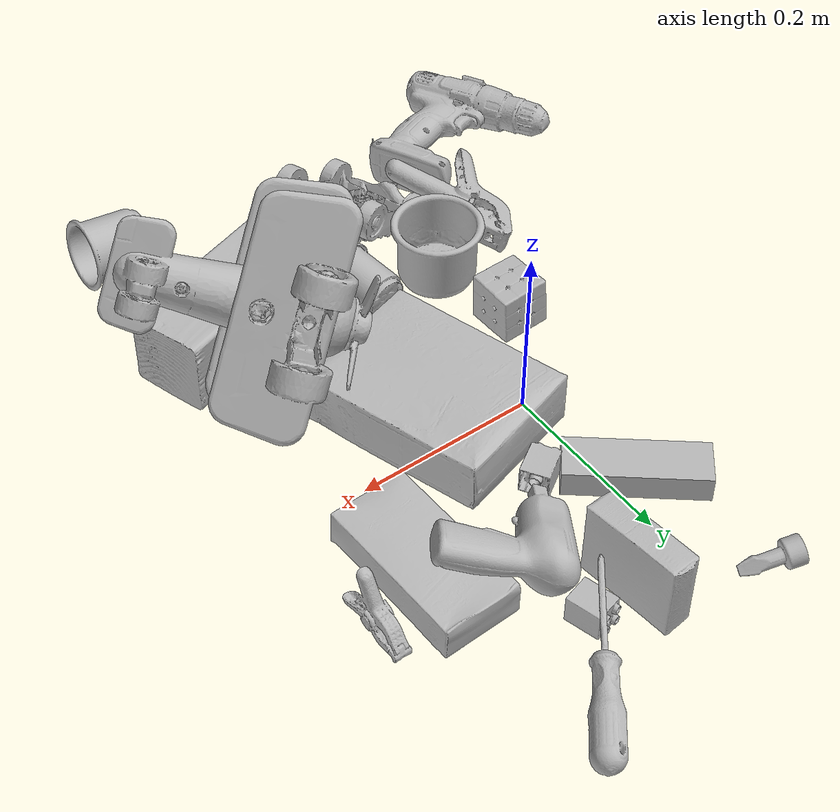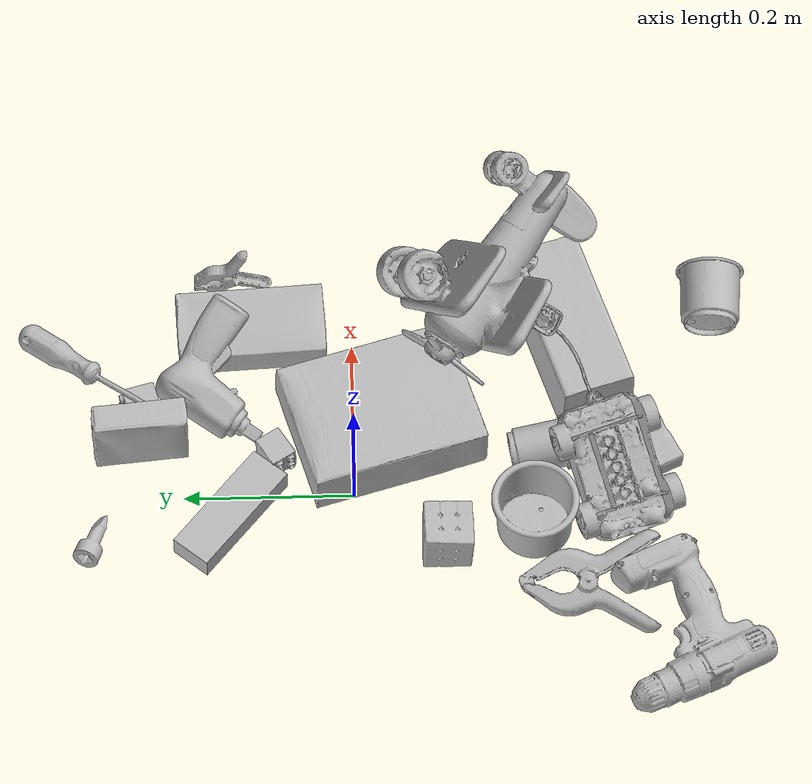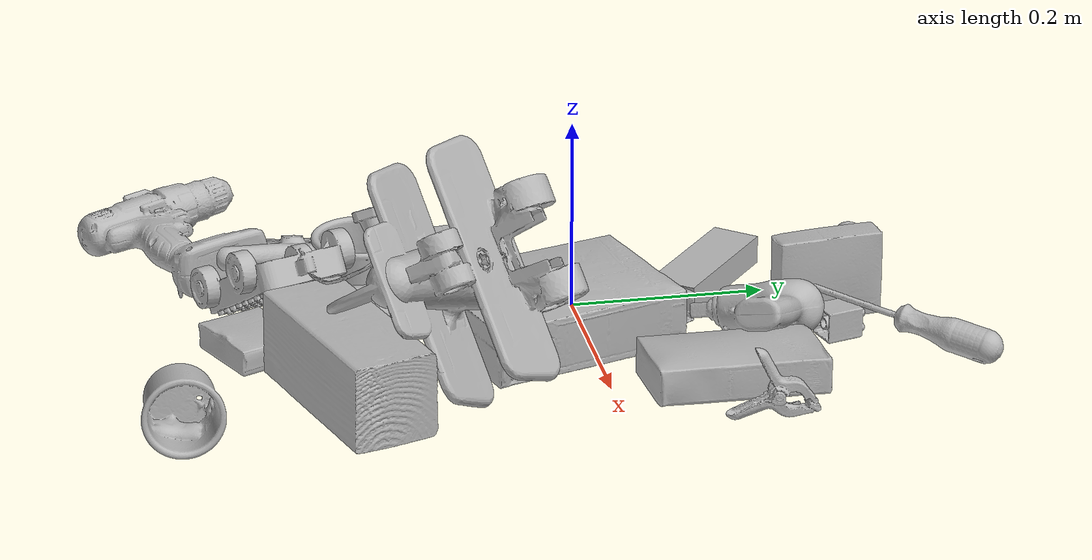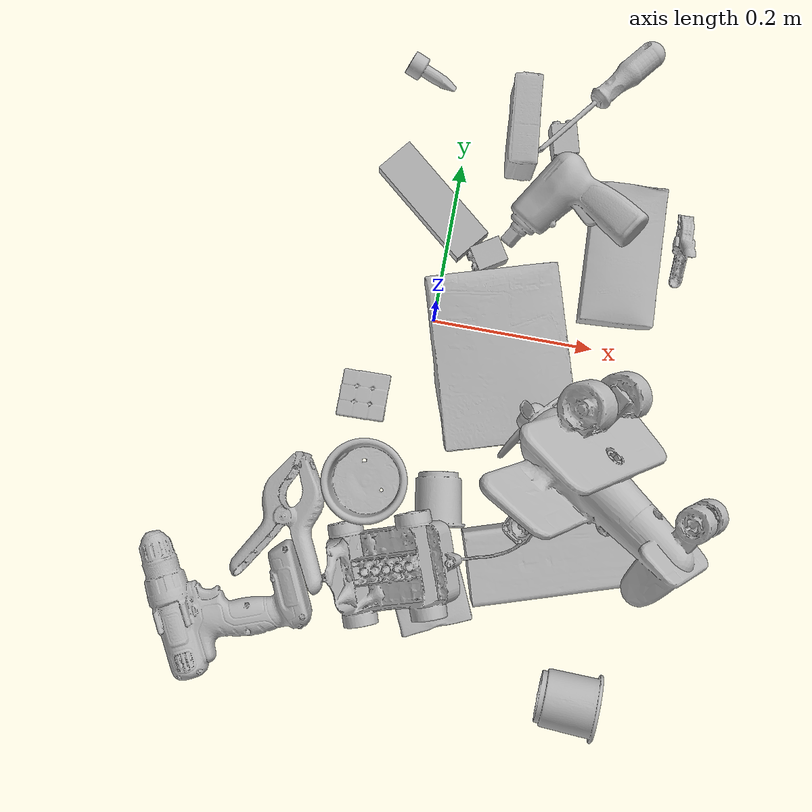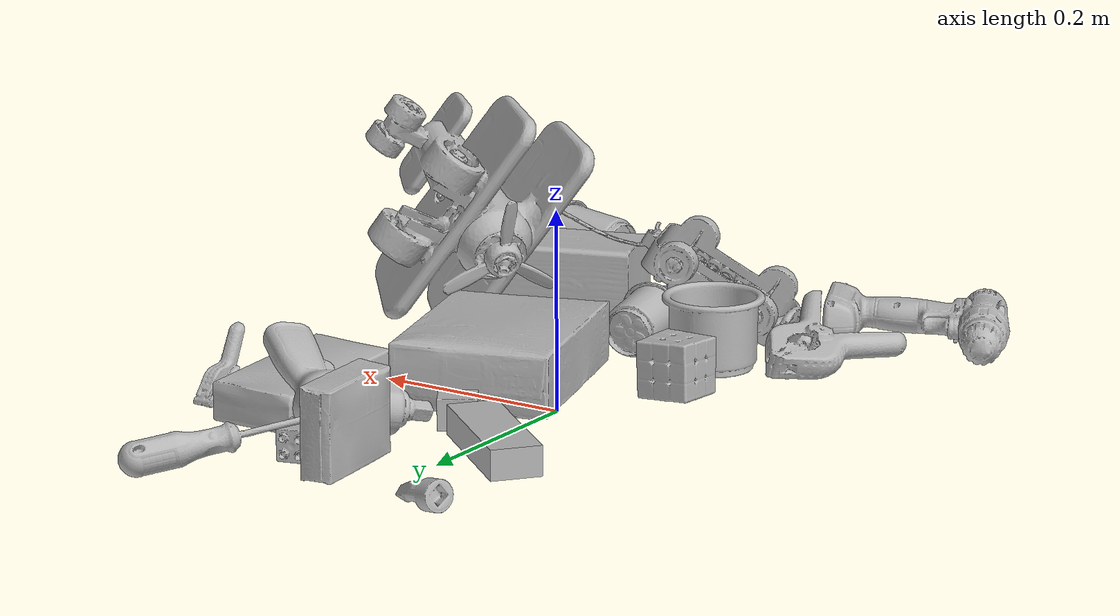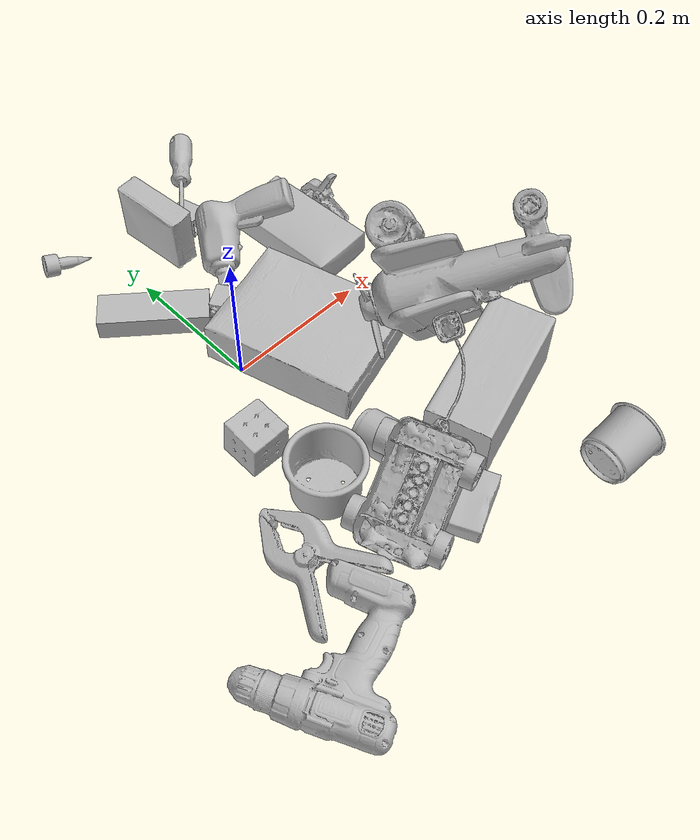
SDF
<sdf version="1.4">
  <world name="default">
    <light name="light1" type="point">
      <pose>0 0 1 0 0 0</pose>
      <diffuse>3 3 3 1</diffuse>
      <specular>3 3 3 1</specular>
    </light>
    <light name="light2" type="point">
      <pose>0 0.5 2 0 0 0</pose>
      <diffuse>1 1 1 1</diffuse>
      <specular>1 1 1 1</specular>
    </light>
    <light name="light3" type="point">
      <pose>0 0.5 2 0 0 0</pose>
      <diffuse>3 3 3 1</diffuse>
      <specular>3 3 3 1</specular>
    </light>
    <scene>
      <ambient>0.7 0.7 0.7</ambient>
    </scene>
    <model name="box21">
      <link name="link_box21">
        <collision name="default">
          <geometry>
            <mesh>
              <uri>model://cracker_box/collision_meshes/collision.obj</uri>
              <scale>1.0 1.0 1.0</scale>
            </mesh>
          </geometry>
          <surface>
            <friction>
              <ode>
                <mu>0.5</mu>
                <mu2>0.5</mu2>
              </ode>
            </friction>
          <contact>
        <ode>
            <max_vel>0</max_vel>
            <min_depth>0.0001</min_depth>
            <kp>1e8</kp>
        </ode>
    </contact></surface>
        </collision>
        <visual name="default">
          <geometry>
            <mesh>
              <uri>model://cracker_box/visual_meshes/visual.dae</uri>
              <scale>1.0 1.0 1.0</scale>
            </mesh>
          </geometry>
        </visual>
        <inertial>
          <mass>2.2869980335235596</mass>
          <pose>0.0009464151225984097 0.0002543425071053207 -0.0017029535956680775 -0.0003162075418873318 -0.011106487737663914 0.0025467956997025456</pose>
          <inertia>
            <ixx>0.005817102</ixx>
            <iyy>0.009605178</iyy>
            <izz>0.013707472</izz>
            <ixy>0</ixy>
            <ixz>0</ixz>
            <iyz>0</iyz>
          </inertia>
        </inertial>
      </link>
      <pose>0.08729596436023712 -0.03293680399656296 0.035531237721443176 3.1372092536164136 -0.01654166793285602 1.8688733891029259</pose>
    </model>
    <model name="box22">
      <link name="link_box22">
        <collision name="default">
          <geometry>
            <mesh>
              <uri>model://pudding_box/collision_meshes/collision.obj</uri>
              <scale>1.0 1.0 1.0</scale>
            </mesh>
          </geometry>
          <surface>
            <friction>
              <ode>
                <mu>0.5</mu>
                <mu2>0.5</mu2>
              </ode>
            </friction>
          <contact>
        <ode>
            <max_vel>0</max_vel>
            <min_depth>0.0001</min_depth>
            <kp>1e8</kp>
        </ode>
    </contact></surface>
        </collision>
        <visual name="default">
          <geometry>
            <mesh>
              <uri>model://pudding_box/visual_meshes/visual.dae</uri>
              <scale>1.0 1.0 1.0</scale>
            </mesh>
          </geometry>
        </visual>
        <inertial>
          <mass>0.5370154976844788</mass>
          <pose>0.0004894821904599667 0.0008067885646596551 -0.0005188827635720372 0.005213101796859606 -0.006603800100757192 0.02007981956729938</pose>
          <inertia>
            <ixx>0.0006070684</ixx>
            <iyy>0.00040843996</iyy>
            <izz>0.00089649507</izz>
            <ixy>0</ixy>
            <ixz>0</ixz>
            <iyz>0</iyz>
          </inertia>
        </inertial>
      </link>
      <pose>0.06650879234075546 0.250510036945343 0.04457630589604378 -0.020294476519508185 -1.5480654588173075 -3.0308014021554754</pose>
    </model>
    <model name="box23">
      <link name="link_box23">
        <collision name="default">
          <geometry>
            <mesh>
              <uri>model://jenga/collision_meshes/collision.obj</uri>
              <scale>1.0 1.0 1.0</scale>
            </mesh>
          </geometry>
          <surface>
            <friction>
              <ode>
                <mu>0.5</mu>
                <mu2>0.5</mu2>
              </ode>
            </friction>
          <contact>
        <ode>
            <max_vel>0</max_vel>
            <min_depth>0.0001</min_depth>
            <kp>1e8</kp>
        </ode>
    </contact></surface>
        </collision>
        <visual name="default">
          <geometry>
            <mesh>
              <uri>model://jenga/visual_meshes/visual.dae</uri>
              <scale>1.0 1.0 1.0</scale>
            </mesh>
          </geometry>
        </visual>
        <inertial>
          <mass>0.17325031757354736</mass>
          <pose>-2.502855807051674e-07 -0.0001025000965455547 -4.0923401684267446e-05 0.0 -7.34215461761844e-07 0.0</pose>
          <inertia>
            <ixx>4.7942573e-05</ixx>
            <iyy>0.00032485754</iyy>
            <izz>0.00034681303</izz>
            <ixy>0</ixy>
            <ixz>0</ixz>
            <iyz>0</iyz>
          </inertia>
        </inertial>
      </link>
      <pose>-0.027045227587223053 0.14530184864997864 0.015000001527369022 3.1415926495522815 6.821740013153601e-09 2.454512551575128</pose>
    </model>
    <model name="cup1">
      <link name="link_cup1">
        <collision name="default">
          <geometry>
            <mesh>
              <uri>model://c_cups/collision_meshes/collision.obj</uri>
              <scale>1.0 1.0 1.0</scale>
            </mesh>
          </geometry>
          <surface>
            <friction>
              <ode>
                <mu>0.5</mu>
                <mu2>0.5</mu2>
              </ode>
            </friction>
          <contact>
        <ode>
            <max_vel>0</max_vel>
            <min_depth>0.0001</min_depth>
            <kp>1e8</kp>
        </ode>
    </contact></surface>
        </collision>
        <visual name="default">
          <geometry>
            <mesh>
              <uri>model://c_cups/visual_meshes/visual.dae</uri>
              <scale>1.0 1.0 1.0</scale>
            </mesh>
          </geometry>
        </visual>
        <inertial>
          <mass>0.033937059342861176</mass>
          <pose>0.0007237257086671889 0.002015391131862998 -0.0012750985333696008 0.3021568203324006 0.0134615240317058 -0.08771816491093205</pose>
          <inertia>
            <ixx>2.5238536e-05</ixx>
            <iyy>2.4792533e-05</iyy>
            <izz>2.2320162e-05</izz>
            <ixy>0</ixy>
            <ixz>0</ixz>
            <iyz>0</iyz>
          </inertia>
        </inertial>
      </link>
      <pose>0.04422016814351082 -0.21673953533172607 0.03021262399852276 -1.4872273623971048 0.3023477536089057 -2.950985590317281</pose>
    </model>
    <model name="cup2">
      <link name="link_cup2">
        <collision name="default">
          <geometry>
            <mesh>
              <uri>model://f_cups/collision_meshes/collision.obj</uri>
              <scale>1.0 1.0 1.0</scale>
            </mesh>
          </geometry>
          <surface>
            <friction>
              <ode>
                <mu>0.5</mu>
                <mu2>0.5</mu2>
              </ode>
            </friction>
          <contact>
        <ode>
            <max_vel>0</max_vel>
            <min_depth>0.0001</min_depth>
            <kp>1e8</kp>
        </ode>
    </contact></surface>
        </collision>
        <visual name="default">
          <geometry>
            <mesh>
              <uri>model://f_cups/visual_meshes/visual.dae</uri>
              <scale>1.0 1.0 1.0</scale>
            </mesh>
          </geometry>
        </visual>
        <inertial>
          <mass>0.10278050601482391</mass>
          <pose>-0.003171466989442706 -0.0006240068469196558 -0.003655537962913513 0.7862283183637603 -0.2607933822369466 -0.1823733550036739</pose>
          <inertia>
            <ixx>9.661645e-05</ixx>
            <iyy>0.00010135175</iyy>
            <izz>0.000105510015</izz>
            <ixy>0</ixy>
            <ixz>0</ixz>
            <iyz>0</iyz>
          </inertia>
        </inertial>
      </link>
      <pose>0.2386172115802765 -0.42644429206848145 0.03727990761399269 1.0696295581810802 -1.3683050322637473 2.031509397108143</pose>
    </model>
    <model name="box11">
      <link name="link_box11">
        <collision name="default">
          <geometry>
            <mesh>
              <uri>model://wood_block/collision_meshes/collision.obj</uri>
              <scale>1.0 1.0 1.0</scale>
            </mesh>
          </geometry>
          <surface>
            <friction>
              <ode>
                <mu>0.5</mu>
                <mu2>0.5</mu2>
              </ode>
            </friction>
          <contact>
        <ode>
            <max_vel>0</max_vel>
            <min_depth>0.0001</min_depth>
            <kp>1e8</kp>
        </ode>
    </contact></surface>
        </collision>
        <visual name="default">
          <geometry>
            <mesh>
              <uri>model://wood_block/visual_meshes/visual.dae</uri>
              <scale>1.0 1.0 1.0</scale>
            </mesh>
          </geometry>
        </visual>
        <inertial>
          <mass>2.321592330932617</mass>
          <pose>-5.813315056002466e-06 -0.000570809468626976 0.0002640858292579651 -0.052209755297172346 -0.005192694580027673 -0.006861376555374886</pose>
          <inertia>
            <ixx>0.0031066423</ixx>
            <iyy>0.009813884</iyy>
            <izz>0.009777175</izz>
            <ixy>0</ixy>
            <ixz>0</ixz>
            <iyz>0</iyz>
          </inertia>
        </inertial>
      </link>
      <pose>0.18960849940776825 -0.25809940695762634 0.045591481029987335 3.1414817086565887 -0.005754153668264005 0.3052171731579544</pose>
    </model>
    <model name="box12">
      <link name="link_box12">
        <collision name="default">
          <geometry>
            <mesh>
              <uri>model://gelatin_box/collision_meshes/collision.obj</uri>
              <scale>1.0 1.0 1.0</scale>
            </mesh>
          </geometry>
          <surface>
            <friction>
              <ode>
                <mu>0.5</mu>
                <mu2>0.5</mu2>
              </ode>
            </friction>
          <contact>
        <ode>
            <max_vel>0</max_vel>
            <min_depth>0.0001</min_depth>
            <kp>1e8</kp>
        </ode>
    </contact></surface>
        </collision>
        <visual name="default">
          <geometry>
            <mesh>
              <uri>model://gelatin_box/visual_meshes/visual.dae</uri>
              <scale>1.0 1.0 1.0</scale>
            </mesh>
          </geometry>
        </visual>
        <inertial>
          <mass>0.2263340801000595</mass>
          <pose>0.0004319618456065655 0.00011156871914863586 -0.00036403207923285663 -0.001050371981036731 -0.004755818689382226 0.016440561334450605</pose>
          <inertia>
            <ixx>0.00015977336</ixx>
            <iyy>0.00011412529</iyy>
            <izz>0.00024321067</izz>
            <ixy>0</ixy>
            <ixz>0</ixz>
            <iyz>0</iyz>
          </inertia>
        </inertial>
      </link>
      <pose>0.05558742582798004 -0.33659419417381287 0.015168314799666405 0.005597472918497141 -0.007304606646662797 -1.1498252974978036</pose>
    </model>
    <model name="box13">
      <link name="link_box13">
        <collision name="default">
          <geometry>
            <mesh>
              <uri>model://sugar_box/collision_meshes/collision.obj</uri>
              <scale>1.0 1.0 1.0</scale>
            </mesh>
          </geometry>
          <surface>
            <friction>
              <ode>
                <mu>0.5</mu>
                <mu2>0.5</mu2>
              </ode>
            </friction>
          <contact>
        <ode>
            <max_vel>0</max_vel>
            <min_depth>0.0001</min_depth>
            <kp>1e8</kp>
        </ode>
    </contact></surface>
        </collision>
        <visual name="default">
          <geometry>
            <mesh>
              <uri>model://sugar_box/visual_meshes/visual.dae</uri>
              <scale>1.0 1.0 1.0</scale>
            </mesh>
          </geometry>
        </visual>
        <inertial>
          <mass>0.4976349174976349</mass>
          <pose>0.0010343727190047503 3.849109634757042e-05 -0.00036364805418998003 -0.0004046263004245651 0.001050663405794887 0.002615379021776999</pose>
          <inertia>
            <ixx>0.0004146281</ixx>
            <iyy>0.0013401629</iyy>
            <izz>0.0016043353</izz>
            <ixy>0</ixy>
            <ixz>0</ixz>
            <iyz>0</iyz>
          </inertia>
        </inertial>
      </link>
      <pose>0.21548260748386383 0.11908240616321564 0.022995365783572197 0.025710232954024536 -0.022450354111601473 -1.5281144185820714</pose>
    </model>
    <model name="box14">
      <link name="link_box14">
        <collision name="default">
          <geometry>
            <mesh>
              <uri>model://rubiks_cube/collision_meshes/collision.obj</uri>
              <scale>1.0 1.0 1.0</scale>
            </mesh>
          </geometry>
          <surface>
            <friction>
              <ode>
                <mu>0.5</mu>
                <mu2>0.5</mu2>
              </ode>
            </friction>
          <contact>
        <ode>
            <max_vel>0</max_vel>
            <min_depth>0.0001</min_depth>
            <kp>1e8</kp>
        </ode>
    </contact></surface>
        </collision>
        <visual name="default">
          <geometry>
            <mesh>
              <uri>model://rubiks_cube/visual_meshes/visual.dae</uri>
              <scale>1.0 1.0 1.0</scale>
            </mesh>
          </geometry>
        </visual>
        <inertial>
          <mass>0.2531126141548157</mass>
          <pose>2.6721041649580002e-05 5.2569666877388954e-05 -7.264316536748083e-06 -0.05467274129792389 -0.0981396008906979 -0.0344563195746163</pose>
          <inertia>
            <ixx>0.00013986173</ixx>
            <iyy>0.00013920949</iyy>
            <izz>0.00014102072</izz>
            <ixy>0</ixy>
            <ixz>0</ixz>
            <iyz>0</iyz>
          </inertia>
        </inertial>
      </link>
      <pose>-0.06788929551839828 -0.10794850438833237 0.02970021218061447 -1.6127565968410895 -0.020651897396214116 -3.1324444842352905</pose>
    </model>
    <model name="cup15">
      <link name="link_cup15">
        <collision name="default">
          <geometry>
            <mesh>
              <uri>model://j_cups/collision_meshes/collision.obj</uri>
              <scale>1.0 1.0 1.0</scale>
            </mesh>
          </geometry>
          <surface>
            <friction>
              <ode>
                <mu>0.5</mu>
                <mu2>0.5</mu2>
              </ode>
            </friction>
          <contact>
        <ode>
            <max_vel>0</max_vel>
            <min_depth>0.0001</min_depth>
            <kp>1e8</kp>
        </ode>
    </contact></surface>
        </collision>
        <visual name="default">
          <geometry>
            <mesh>
              <uri>model://j_cups/visual_meshes/visual.dae</uri>
              <scale>1.0 1.0 1.0</scale>
            </mesh>
          </geometry>
        </visual>
        <inertial>
          <mass>0.12765173614025116</mass>
          <pose>0.0006164864171296358 0.0005398980574682355 -0.0013479006011039019 0.030303852295551513 0.03757989298695449 0.4386938541947324</pose>
          <inertia>
            <ixx>0.00018743309</ixx>
            <iyy>0.00018938213</iyy>
            <izz>0.0002160715</izz>
            <ixy>0</ixy>
            <ixz>0</ixz>
            <iyz>0</iyz>
          </inertia>
        </inertial>
      </link>
      <pose>-0.04700816050171852 -0.20984385907649994 0.037989016622304916 2.772304948914911e-07 -1.0805115138664146e-07 2.466942805824025</pose>
    </model>
    <model name="toy1">
      <link name="link_toy1">
        <collision name="default">
          <geometry>
            <mesh>
              <uri>model://f_lego_duplo/collision_meshes/collision.obj</uri>
              <scale>1.0 1.0 1.0</scale>
            </mesh>
          </geometry>
          <surface>
            <friction>
              <ode>
                <mu>0.5</mu>
                <mu2>0.5</mu2>
              </ode>
            </friction>
          <contact>
        <ode>
            <max_vel>0</max_vel>
            <min_depth>0.0001</min_depth>
            <kp>1e8</kp>
        </ode>
    </contact></surface>
        </collision>
        <visual name="default">
          <geometry>
            <mesh>
              <uri>model://f_lego_duplo/visual_meshes/visual.dae</uri>
              <scale>1.0 1.0 1.0</scale>
            </mesh>
          </geometry>
        </visual>
        <inertial>
          <mass>0.04013235494494438</mass>
          <pose>2.369376306887716e-05 0.00013393163681030273 0.0018837876850739121 0.029838734112773806 -0.014424842824784668 -0.6756708500035773</pose>
          <inertia>
            <ixx>8.480189e-06</ixx>
            <iyy>8.555736e-06</iyy>
            <izz>7.361164e-06</izz>
            <ixy>0</ixy>
            <ixz>0</ixz>
            <iyz>0</iyz>
          </inertia>
        </inertial>
      </link>
      <pose>0.11950945109128952 0.2518159747123718 0.016502631828188896 -1.5708689952228707 -4.138654919061488e-05 0.2658872762650111</pose>
    </model>
    <model name="toy2">
      <link name="link_toy2">
        <collision name="default">
          <geometry>
            <mesh>
              <uri>model://e_toy_airplane/collision_meshes/collision.obj</uri>
              <scale>1.0 1.0 1.0</scale>
            </mesh>
          </geometry>
          <surface>
            <friction>
              <ode>
                <mu>0.5</mu>
                <mu2>0.5</mu2>
              </ode>
            </friction>
          <contact>
        <ode>
            <max_vel>0</max_vel>
            <min_depth>0.0001</min_depth>
            <kp>1e8</kp>
        </ode>
    </contact></surface>
        </collision>
        <visual name="default">
          <geometry>
            <mesh>
              <uri>model://e_toy_airplane/visual_meshes/visual.dae</uri>
              <scale>1.0 1.0 1.0</scale>
            </mesh>
          </geometry>
        </visual>
        <inertial>
          <mass>0.030105752870440483</mass>
          <pose>0.00011740480840671808 -2.248285454697907e-05 -0.011187204159796238 0.0055184715057391125 0.009228317867647443 0.150413097465581</pose>
          <inertia>
            <ixx>9.18862e-06</ixx>
            <iyy>9.094625e-06</iyy>
            <izz>2.761542e-06</izz>
            <ixy>0</ixy>
            <ixz>0</ixz>
            <iyz>0</iyz>
          </inertia>
        </inertial>
      </link>
      <pose>-0.05558677762746811 0.30443862080574036 0.012002037838101387 1.781961562428216 -0.5838926493349713 1.10221852446675</pose>
    </model>
    <model name="toy3">
      <link name="link_toy3">
        <collision name="default">
          <geometry>
            <mesh>
              <uri>model://g_lego_duplo/collision_meshes/collision.obj</uri>
              <scale>1.0 1.0 1.0</scale>
            </mesh>
          </geometry>
          <surface>
            <friction>
              <ode>
                <mu>0.5</mu>
                <mu2>0.5</mu2>
              </ode>
            </friction>
          <contact>
        <ode>
            <max_vel>0</max_vel>
            <min_depth>0.0001</min_depth>
            <kp>1e8</kp>
        </ode>
    </contact></surface>
        </collision>
        <visual name="default">
          <geometry>
            <mesh>
              <uri>model://g_lego_duplo/visual_meshes/visual.dae</uri>
              <scale>1.0 1.0 1.0</scale>
            </mesh>
          </geometry>
        </visual>
        <inertial>
          <mass>0.4529305100440979</mass>
          <pose>-0.050047703087329865 0.0017554633086547256 0.0038806775119155645 0.010963008114131517 0.03810824387856379 -0.09653032518797504</pose>
          <inertia>
            <ixx>0.00065630145</ixx>
            <iyy>0.0019842102</iyy>
            <izz>0.0024823209</izz>
            <ixy>0</ixy>
            <ixz>0</ixz>
            <iyz>0</iyz>
          </inertia>
        </inertial>
      </link>
      <pose>0.04848920553922653 -0.2848129868507385 0.08945345133543015 -3.141523771402952 -0.5303316321264486 0.34877145333689563</pose>
    </model>
    <model name="toy4">
      <link name="link_toy4">
        <collision name="default">
          <geometry>
            <mesh>
              <uri>model://b_lego_duplo/collision_meshes/collision.obj</uri>
              <scale>1.0 1.0 1.0</scale>
            </mesh>
          </geometry>
          <surface>
            <friction>
              <ode>
                <mu>0.5</mu>
                <mu2>0.5</mu2>
              </ode>
            </friction>
          <contact>
        <ode>
            <max_vel>0</max_vel>
            <min_depth>0.0001</min_depth>
            <kp>1e8</kp>
        </ode>
    </contact></surface>
        </collision>
        <visual name="default">
          <geometry>
            <mesh>
              <uri>model://b_lego_duplo/visual_meshes/visual.dae</uri>
              <scale>1.0 1.0 1.0</scale>
            </mesh>
          </geometry>
        </visual>
        <inertial>
          <mass>0.018499748781323433</mass>
          <pose>-0.00011053003981942311 -9.15247255761642e-06 0.001929429592564702 -0.037494549291744686 -0.026354734626349716 0.4518828938821803</pose>
          <inertia>
            <ixx>3.786112e-06</ixx>
            <iyy>3.8115643e-06</iyy>
            <izz>3.3733036e-06</izz>
            <ixy>0</ixy>
            <ixz>0</ixz>
            <iyz>0</iyz>
          </inertia>
        </inertial>
      </link>
      <pose>0.05014545097947121 0.09026481211185455 0.01613721065223217 1.5634594139649503 -0.001429265766034101 -1.0034135152509156</pose>
    </model>
    <model name="toy5">
      <link name="link_toy5">
        <collision name="default">
          <geometry>
            <mesh>
              <uri>model://b_toy_airplane/collision_meshes/collision.obj</uri>
              <scale>1.0 1.0 1.0</scale>
            </mesh>
          </geometry>
          <surface>
            <friction>
              <ode>
                <mu>0.5</mu>
                <mu2>0.5</mu2>
              </ode>
            </friction>
          <contact>
        <ode>
            <max_vel>0</max_vel>
            <min_depth>0.0001</min_depth>
            <kp>1e8</kp>
        </ode>
    </contact></surface>
        </collision>
        <visual name="default">
          <geometry>
            <mesh>
              <uri>model://b_toy_airplane/visual_meshes/visual.dae</uri>
              <scale>1.0 1.0 1.0</scale>
            </mesh>
          </geometry>
        </visual>
        <inertial>
          <mass>0.38904744386672974</mass>
          <pose>0.00508136348798871 0.004015582147985697 0.00954306498169899 -0.040018071915393034 -0.04022181905785318 -0.5601502897874057</pose>
          <inertia>
            <ixx>0.00072227366</ixx>
            <iyy>0.0002886998</iyy>
            <izz>0.0008985803</izz>
            <ixy>0</ixy>
            <ixz>0</ixz>
            <iyz>0</iyz>
          </inertia>
        </inertial>
      </link>
      <pose>0.13937504589557648 0.17390842735767365 0.054267629981040955 -2.7608874936580907 0.1851099591090426 -2.1511930065792892</pose>
    </model>
    <model name="toy6">
      <link name="link_toy6">
        <collision name="default">
          <geometry>
            <mesh>
              <uri>model://a_toy_airplane/collision_meshes/collision.obj</uri>
              <scale>1.0 1.0 1.0</scale>
            </mesh>
          </geometry>
          <surface>
            <friction>
              <ode>
                <mu>0.5</mu>
                <mu2>0.5</mu2>
              </ode>
            </friction>
          <contact>
        <ode>
            <max_vel>0</max_vel>
            <min_depth>0.0001</min_depth>
            <kp>1e8</kp>
        </ode>
    </contact></surface>
        </collision>
        <visual name="default">
          <geometry>
            <mesh>
              <uri>model://a_toy_airplane/visual_meshes/visual.dae</uri>
              <scale>1.0 1.0 1.0</scale>
            </mesh>
          </geometry>
        </visual>
        <inertial>
          <mass>2.344027519226074</mass>
          <pose>0.025165099650621414 -0.003707322059199214 -0.0011962436838075519 -0.012016950381748406 -0.14663507119063698 0.004149124939747771</pose>
          <inertia>
            <ixx>0.008512287</ixx>
            <iyy>0.012404123</iyy>
            <izz>0.014523712</izz>
            <ixy>0</ixy>
            <ixz>0</ixz>
            <iyz>0</iyz>
          </inertia>
        </inertial>
      </link>
      <pose>0.22784671187400818 -0.16914869844913483 0.14489169418811798 -2.1647610515200646 0.21232109873297367 2.334076127859735</pose>
    </model>
    <model name="hardware1">
      <link name="link_hardware1">
        <collision name="default">
          <geometry>
            <mesh>
              <uri>model://power_drill/collision_meshes/collision.obj</uri>
              <scale>1.0 1.0 1.0</scale>
            </mesh>
          </geometry>
          <surface>
            <friction>
              <ode>
                <mu>0.5</mu>
                <mu2>0.5</mu2>
              </ode>
            </friction>
          <contact>
        <ode>
            <max_vel>0</max_vel>
            <min_depth>0.0001</min_depth>
            <kp>1e8</kp>
        </ode>
    </contact></surface>
        </collision>
        <visual name="default">
          <geometry>
            <mesh>
              <uri>model://power_drill/visual_meshes/visual.dae</uri>
              <scale>1.0 1.0 1.0</scale>
            </mesh>
          </geometry>
        </visual>
        <inertial>
          <mass>0.3504050374031067</mass>
          <pose>-0.014780547469854355 0.014369429089128971 0.0012414171360433102 0.0046091621872236125 0.004073022304059966 -0.18362696816981472</pose>
          <inertia>
            <ixx>0.001427917</ixx>
            <iyy>0.0005618108</iyy>
            <izz>0.0018858167</izz>
            <ixy>0</ixy>
            <ixz>0</ixz>
            <iyz>0</iyz>
          </inertia>
        </inertial>
      </link>
      <pose>-0.190299853682518 -0.368754506111145 0.027312446385622025 -0.03030600556913337 -0.04725284858649187 2.027913046826684</pose>
    </model>
    <model name="hardware2">
      <link name="link_hardware2">
        <collision name="default">
          <geometry>
            <mesh>
              <uri>model://phillips_screwdriver/collision_meshes/collision.obj</uri>
              <scale>1.0 1.0 1.0</scale>
            </mesh>
          </geometry>
          <surface>
            <friction>
              <ode>
                <mu>0.5</mu>
                <mu2>0.5</mu2>
              </ode>
            </friction>
          <contact>
        <ode>
            <max_vel>0</max_vel>
            <min_depth>0.0001</min_depth>
            <kp>1e8</kp>
        </ode>
    </contact></surface>
        </collision>
        <visual name="default">
          <geometry>
            <mesh>
              <uri>model://phillips_screwdriver/visual_meshes/visual.dae</uri>
              <scale>1.0 1.0 1.0</scale>
            </mesh>
          </geometry>
        </visual>
        <inertial>
          <mass>0.06613585352897644</mass>
          <pose>-0.04777182638645172 0.0010362302418798208 -0.000455554953077808 -0.157256923583716 0.005850995849984215 -0.0021567369270283215</pose>
          <inertia>
            <ixx>7.770284e-06</ixx>
            <iyy>9.742579e-05</iyy>
            <izz>9.7508564e-05</izz>
            <ixy>0</ixy>
            <ixz>0</ixz>
            <iyz>0</iyz>
          </inertia>
        </inertial>
      </link>
      <pose>0.15594856441020966 0.3093436062335968 0.030503742396831512 -0.9384140443386811 -0.13834162044509007 -2.231238620225927</pose>
    </model>
    <model name="hardware3">
      <link name="link_hardware3">
        <collision name="default">
          <geometry>
            <mesh>
              <uri>model://large_clamp/collision_meshes/collision.obj</uri>
              <scale>1.0 1.0 1.0</scale>
            </mesh>
          </geometry>
          <surface>
            <friction>
              <ode>
                <mu>0.5</mu>
                <mu2>0.5</mu2>
              </ode>
            </friction>
          <contact>
        <ode>
            <max_vel>0</max_vel>
            <min_depth>0.0001</min_depth>
            <kp>1e8</kp>
        </ode>
    </contact></surface>
        </collision>
        <visual name="default">
          <geometry>
            <mesh>
              <uri>model://large_clamp/visual_meshes/visual.dae</uri>
              <scale>1.0 1.0 1.0</scale>
            </mesh>
          </geometry>
        </visual>
        <inertial>
          <mass>0.0812491774559021</mass>
          <pose>0.00636935792863369 0.00035856812610290945 -0.0001839803153416142 -0.0021330695247891995 0.009671592144941876 0.026633191629386817</pose>
          <inertia>
            <ixx>7.1684015e-05</ixx>
            <iyy>0.00013613176</iyy>
            <izz>0.00019693196</izz>
            <ixy>0</ixy>
            <ixz>0</ixz>
            <iyz>0</iyz>
          </inertia>
        </inertial>
      </link>
      <pose>-0.1311412900686264 -0.2712705731391907 0.023429710417985916 2.8536925228673664 0.07447865757178497 1.5511568431165943</pose>
    </model>
    <model name="hardware4">
      <link name="link_hardware4">
        <collision name="default">
          <geometry>
            <mesh>
              <uri>model://medium_clamp/collision_meshes/collision.obj</uri>
              <scale>1.0 1.0 1.0</scale>
            </mesh>
          </geometry>
          <surface>
            <friction>
              <ode>
                <mu>0.5</mu>
                <mu2>0.5</mu2>
              </ode>
            </friction>
          <contact>
        <ode>
            <max_vel>0</max_vel>
            <min_depth>0.0001</min_depth>
            <kp>1e8</kp>
        </ode>
    </contact></surface>
        </collision>
        <visual name="default">
          <geometry>
            <mesh>
              <uri>model://medium_clamp/visual_meshes/visual.dae</uri>
              <scale>1.0 1.0 1.0</scale>
            </mesh>
          </geometry>
        </visual>
        <inertial>
          <mass>0.04165364429354668</mass>
          <pose>0.0053909956477582455 0.00039532381924800575 -0.0001222159044118598 -0.0012269202016338824 0.0025845009837354585 0.038207769727488725</pose>
          <inertia>
            <ixx>1.134795e-05</ixx>
            <iyy>1.6514476e-05</iyy>
            <izz>2.5437248e-05</izz>
            <ixy>0</ixy>
            <ixz>0</ixz>
            <iyz>0</iyz>
          </inertia>
        </inertial>
      </link>
      <pose>0.2880576252937317 0.143762469291687 0.02436229959130287 1.5765637748780712 0.39346729415056814 1.573418075587972</pose>
    </model>
  <physics type="ode">
      <max_contacts>50</max_contacts>
      <ode>
        <solver>
          <type>quick</type>
          <iters>75</iters>
        </solver>
        <constraints>
          <contact_max_correcting_vel>0</contact_max_correcting_vel>
          <contact_surface_layer>0</contact_surface_layer>
        </constraints>
      </ode>
    </physics></world>
</sdf>
